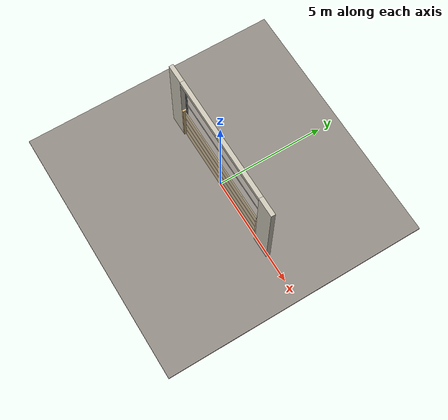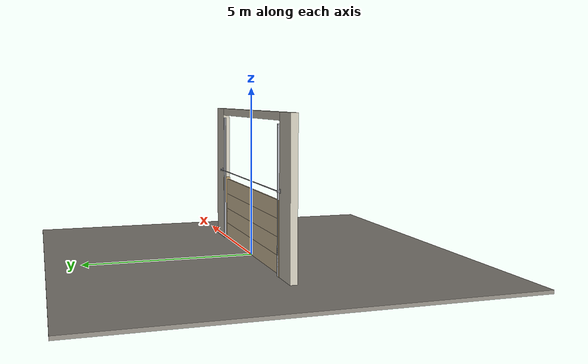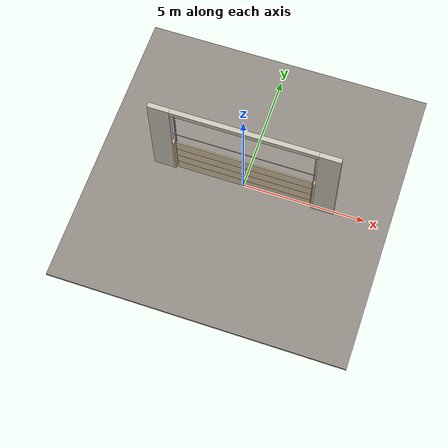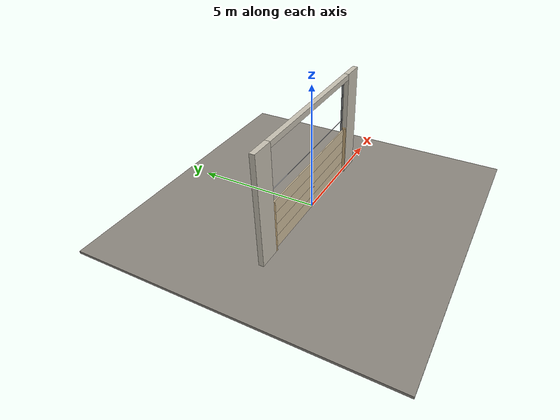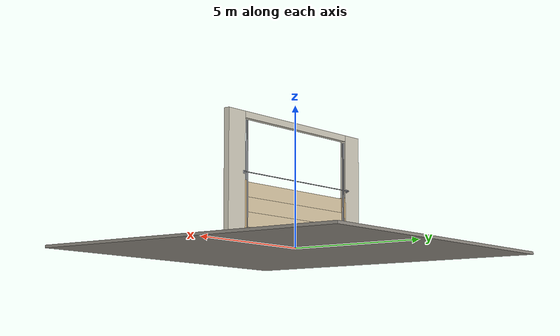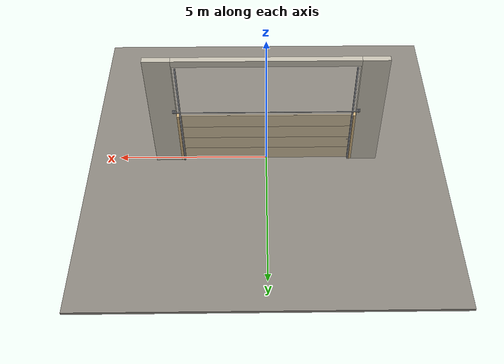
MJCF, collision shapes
<?xml version="1.0" ?>
<mujoco model="db0538_garage_sectional_simple">
  <compiler angle="radian" meshdir="../../hardware" texturedir="../../textures" autolimits="true" inertiafromgeom="false"/>
  <option timestep="0.002" integrator="implicitfast" cone="elliptic" impratio="10" noslip_iterations="3">
    <flag multiccd="enable"/>
  </option>
  <size memory="16M"/>
  <default>
    <geom condim="4" solref="0.005 1" solimp="0.95 0.99 0.001"/>
    <joint solreflimit="0.005 1" solimplimit="0.95 0.99 0.001"/>
    <tendon solreflimit="0.005 1"/>
    <equality solref="0.002 1"/>
  </default>
  <visual>
    <headlight ambient="0.4 0.4 0.4" diffuse="0.7 0.7 0.7" specular="0.2 0.2 0.2"/>
    <quality shadowsize="4096"/>
    <map znear="0.01" zfar="60"/>
  </visual>
  <asset>
    <mesh name="lever_01c630149d" file="lever_01c630149d.obj"/>
    <material name="mat_floor" rgba="0.55 0.53 0.5 1" specular="0.2" shininess="0.15" reflectance="0"/>
    <material name="mat_wall" rgba="0.78 0.76 0.7 1" specular="0.2" shininess="0.1" reflectance="0"/>
    <material name="mat_frame" rgba="0.82 0.7 0.5 1" specular="0.2" shininess="0.45" reflectance="0"/>
    <material name="mat_track" rgba="0.65 0.66 0.68 1" specular="0.74" shininess="0.5" reflectance="0.36"/>
    <material name="mat_section_0" rgba="0.82 0.75 0.62 1" specular="0.23" shininess="0.38" reflectance="0.02"/>
    <material name="mat_section_1" rgba="0.82 0.75 0.62 1" specular="0.23" shininess="0.38" reflectance="0.02"/>
    <material name="mat_hinge_line" rgba="0.2 0.2 0.2 1" specular="0.2" shininess="0.3" reflectance="0"/>
    <material name="mat_section_2" rgba="0.82 0.75 0.62 1" specular="0.23" shininess="0.38" reflectance="0.02"/>
    <material name="mat_section_3" rgba="0.82 0.75 0.62 1" specular="0.23" shininess="0.38" reflectance="0.02"/>
    <material name="mat_spring" rgba="0.55 0.56 0.58 1" specular="0.8" shininess="0.55" reflectance="0.4"/>
    <material name="mat_op_black_matte_metal" rgba="0.05 0.05 0.05 1" specular="0.38" shininess="0.3" reflectance="0.12"/>
    <material name="mat_trim" rgba="0.85 0.66 0.3 1" specular="0.8" shininess="0.75" reflectance="0.4"/>
    <material name="mat_lockbar" rgba="0.65 0.66 0.68 1" specular="0.74" shininess="0.5" reflectance="0.36"/>
    <texture name="skybox" type="skybox" builtin="gradient" rgb1="0.6 0.7 0.85" rgb2="0.9 0.92 0.95" width="256" height="256"/>
  </asset>
  <worldbody>
    <light name="sun" pos="1.5 -2.5 4" dir="-0.3 0.5 -0.8" directional="true" diffuse="0.8 0.8 0.8" specular="0.3 0.3 0.3" castshadow="true"/>
    <light name="fill" pos="-1.5 2.5 3" dir="0.3 -0.5 -0.7" directional="true" diffuse="0.35 0.35 0.4" castshadow="false"/>
    <camera name="robot_view" pos="0 -5.81875 2.65425" xyaxes="1 0 0 0 0.26963 0.962964" fovy="52"/>
    <camera name="far_view" pos="0 5.81875 2.65425" xyaxes="-1 0 0 0 -0.26963 0.962964" fovy="52"/>
    <camera name="iso" pos="4.42225 -4.88775 3.58525" xyaxes="0.741536 0.670913 0 -0.242917 0.268487 0.932151" fovy="46"/>
    <camera name="detail_handle" pos="0.2115 -1.1625 1.25" xyaxes="0.975133 0.221621 0 -0.065674 0.288965 0.955084" fovy="38"/>
    <geom name="floor" type="box" size="6 6 0.05" pos="0 0 -0.05" material="mat_floor" group="0" contype="1" conaffinity="1" friction="0.8 0.005 0.0001" density="2400"/>
    <geom name="wall_left" type="box" size="0.4275 0.1 2.175" pos="-3.3175 0 2.175" material="mat_wall" group="0" contype="1" conaffinity="1" friction="0.6 0.005 0.0001" density="800"/>
    <geom name="wall_right" type="box" size="0.4275 0.1 2.175" pos="3.3175 0 2.175" material="mat_wall" group="0" contype="1" conaffinity="1" friction="0.6 0.005 0.0001" density="800"/>
    <geom name="wall_header" type="box" size="2.89 0.1 0.11" pos="0 0 4.24" material="mat_wall" group="0" contype="1" conaffinity="1" friction="0.6 0.005 0.0001" density="800"/>
    <geom name="garage_jamb_l" type="box" size="0.04 0.1 1.025" pos="-2.85 0 1.025" material="mat_frame" group="0" contype="1" conaffinity="1" friction="0.6 0.005 0.0001" density="400"/>
    <geom name="garage_jamb_r" type="box" size="0.04 0.1 1.025" pos="2.85 0 1.025" material="mat_frame" group="0" contype="1" conaffinity="1" friction="0.6 0.005 0.0001" density="400"/>
    <geom name="track_l" type="box" size="0.004 0.033 2.025" pos="-2.795 0.0825 2.025" material="mat_track" group="0" contype="1" conaffinity="1" friction="0.6 0.005 0.0001" density="7850"/>
    <geom name="track_l_flange_n" type="box" size="0.022 0.004 2.025" pos="-2.777 0.0535 2.025" material="mat_track" group="0" contype="1" conaffinity="1" friction="0.6 0.005 0.0001" density="7850"/>
    <geom name="track_l_flange_p" type="box" size="0.022 0.004 2.025" pos="-2.777 0.1115 2.025" material="mat_track" group="0" contype="1" conaffinity="1" friction="0.6 0.005 0.0001" density="7850"/>
    <geom name="track_r" type="box" size="0.004 0.033 2.025" pos="2.795 0.0825 2.025" material="mat_track" group="0" contype="1" conaffinity="1" friction="0.6 0.005 0.0001" density="7850"/>
    <geom name="track_r_flange_n" type="box" size="0.022 0.004 2.025" pos="2.777 0.0535 2.025" material="mat_track" group="0" contype="1" conaffinity="1" friction="0.6 0.005 0.0001" density="7850"/>
    <geom name="track_r_flange_p" type="box" size="0.022 0.004 2.025" pos="2.777 0.1115 2.025" material="mat_track" group="0" contype="1" conaffinity="1" friction="0.6 0.005 0.0001" density="7850"/>
    <geom name="torsion_shaft" type="cylinder" size="0.013 3" pos="0 0.17 2.3" quat="0.707107 0 0.707107 0" material="mat_track" group="0" contype="1" conaffinity="1" friction="0.6 0.005 0.0001" density="7850"/>
    <geom name="torsion_bearing_plate_l" type="box" size="0.055 0.004 0.055" pos="-2.95 0.104 2.3" material="mat_track" group="1" contype="0" conaffinity="0" density="7850"/>
    <geom name="torsion_bearing_arm_l" type="box" size="0.008 0.049 0.03" pos="-2.95 0.139 2.3" material="mat_track" group="1" contype="0" conaffinity="0" density="7850"/>
    <geom name="torsion_bearing_plate_r" type="box" size="0.055 0.004 0.055" pos="2.95 0.104 2.3" material="mat_track" group="1" contype="0" conaffinity="0" density="7850"/>
    <geom name="torsion_bearing_arm_r" type="box" size="0.008 0.049 0.03" pos="2.95 0.139 2.3" material="mat_track" group="1" contype="0" conaffinity="0" density="7850"/>
    <site name="approach_point" pos="0 -2 0" quat="1 0 0 0" size="0.05" rgba="0.2 0.9 0.2 0.5" group="4"/>
    <site name="goal_point" pos="0 2 0" quat="1 0 0 0" size="0.05" rgba="0.2 0.9 0.2 0.5" group="4"/>
    <site name="door_plane_center" pos="0 0 1.025" quat="1 0 0 0" size="0.02" rgba="0.2 0.9 0.2 0.5" group="4"/>
    <body name="door" pos="0 0 0">
      <inertial pos="0 0 1.01" mass="119.369714" quat="0 0 0.707107 0.707107" diaginertia="39.810048204 299.838069282 339.607830207"/>
      <joint name="door_slide" type="slide" axis="0 0 1" limited="true" range="0 1.95" damping="7.99415" frictionloss="141.078075" stiffness="153.791445" springref="6.5" armature="0.5"/>
      <geom name="section_0_slab" type="box" size="2.745 0.0225 0.25" pos="0 0 0.26" material="mat_section_0" group="0" contype="1" conaffinity="1" friction="0.4 0.005 0.0001" density="1"/>
      <geom name="section_1_slab" type="box" size="2.745 0.0225 0.25" pos="0 0 0.76" material="mat_section_1" group="0" contype="1" conaffinity="1" friction="0.4 0.005 0.0001" density="1"/>
      <geom name="section_2_slab" type="box" size="2.745 0.0225 0.25" pos="0 0 1.26" material="mat_section_2" group="0" contype="1" conaffinity="1" friction="0.4 0.005 0.0001" density="1"/>
      <geom name="section_3_slab" type="box" size="2.745 0.0225 0.25" pos="0 0 1.76" material="mat_section_3" group="0" contype="1" conaffinity="1" friction="0.4 0.005 0.0001" density="1"/>
      <body name="t_handle" pos="0 0 0.9">
        <inertial pos="0 -0.051615 0" mass="0.254469" quat="1 0 0 0" diaginertia="0.000075558 0.000207252 0.000256627"/>
        <joint name="t_handle_hinge" type="hinge" axis="0 -1 0" limited="true" range="0 1.5708" damping="0.127804" frictionloss="0.028" stiffness="0.4" springref="-0.75" armature="0.01"/>
        <geom name="t_handle_t_n" type="mesh" mesh="lever_01c630149d" pos="0 -0.0225 0" quat="0.707107 0.707107 0 0" material="mat_op_black_matte_metal" group="1" contype="0" conaffinity="0" density="3000"/>
        <geom name="t_handle_t_col_n" type="box" size="0.055 0.008 0.008" pos="0 -0.0625 0" material="mat_op_black_matte_metal" group="3" contype="1" conaffinity="1" rgba="0.8 0.3 0.3 0.25" friction="0.6 0.005 0.0001" density="3000"/>
        <site name="t_handle_grip_n" pos="-0.0385 -0.0625 0" quat="1 0 0 0" size="0.012" rgba="0.2 0.9 0.2 0.5" group="4"/>
      </body>
      <body name="lock_bar_l" pos="-2.695 0.03 0.9">
        <inertial pos="-0.04 0 0" mass="0.095884" quat="0 0 0.707107 0.707107" diaginertia="0.0000017 0.00009424 0.00009424"/>
        <joint name="lock_bar_l_slide" type="slide" axis="1 0 0" limited="true" range="0 0.03" damping="2" frictionloss="1" armature="0.1"/>
        <geom name="lock_bar_l_geom" type="capsule" size="0.006 0.05" pos="-0.04 0 0" quat="0.707107 0 0.707107 0" material="mat_lockbar" group="1" contype="0" conaffinity="0" density="7850"/>
      </body>
      <body name="lock_bar_r" pos="2.695 0.03 0.9">
        <inertial pos="0.04 0 0" mass="0.095884" quat="0 0 0.707107 0.707107" diaginertia="0.0000017 0.00009424 0.00009424"/>
        <joint name="lock_bar_r_slide" type="slide" axis="-1 0 0" limited="true" range="0 0.03" damping="2" frictionloss="1" armature="0.1"/>
        <geom name="lock_bar_r_geom" type="capsule" size="0.006 0.05" pos="0.04 0 0" quat="0.707107 0 0.707107 0" material="mat_lockbar" group="1" contype="0" conaffinity="0" density="7850"/>
      </body>
    </body>
  </worldbody>
  <equality>
    <joint name="lock_bar_l_couple" joint1="lock_bar_l_slide" joint2="t_handle_hinge" polycoef="0 0.019099 0 0 0" active="true"/>
    <joint name="lock_bar_r_couple" joint1="lock_bar_r_slide" joint2="t_handle_hinge" polycoef="0 0.019099 0 0 0" active="true"/>
  </equality>
  <sensor>
    <jointpos name="door_slide_pos" joint="door_slide"/>
    <jointvel name="door_slide_vel" joint="door_slide"/>
    <jointpos name="t_handle_hinge_pos" joint="t_handle_hinge"/>
    <jointvel name="t_handle_hinge_vel" joint="t_handle_hinge"/>
    <jointpos name="lock_bar_l_slide_pos" joint="lock_bar_l_slide"/>
    <jointvel name="lock_bar_l_slide_vel" joint="lock_bar_l_slide"/>
    <jointpos name="lock_bar_r_slide_pos" joint="lock_bar_r_slide"/>
    <jointvel name="lock_bar_r_slide_vel" joint="lock_bar_r_slide"/>
  </sensor>
</mujoco>
